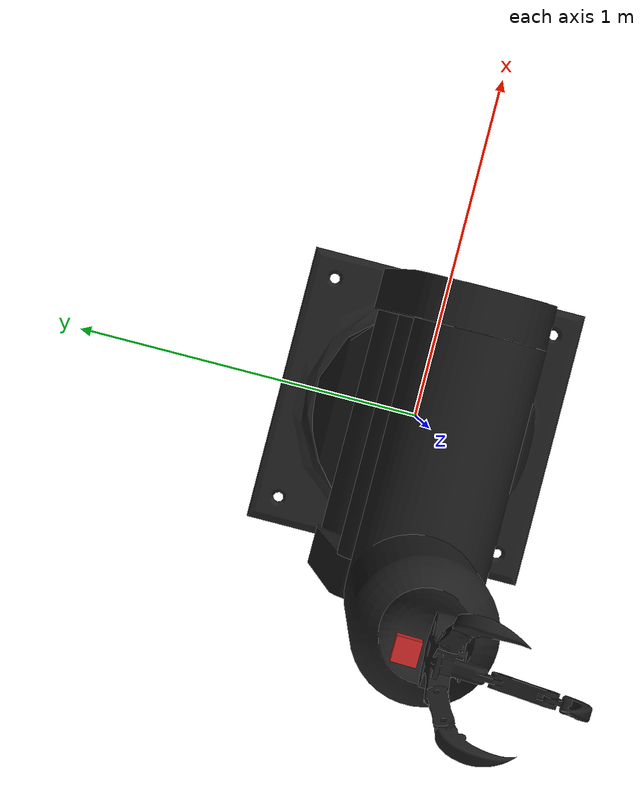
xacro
<?xml version="1.0" ?>

<robot name="mrm" xmlns:xacro="http://www.ros.org/wiki/xacro">

  <!-- BGN - Include -->
  <xacro:include filename="$(find eagle_claw_gripper)/urdf/robot_parameters.xacro" />
  <xacro:include filename="$(find eagle_claw_gripper)/urdf/links_joints.xacro" />
  <!-- END - Include -->

  <!-- BGN - Robot description -->
  <m_link_mesh name="${link_00_name}"
              origin_rpy="1.57 0 0" origin_xyz="0 0 0"
              mass="1024"
              ixx="170.667" ixy="0" ixz="0"
              iyy="170.667" iyz="0"
              izz="170.667"
              meshfile="package://eagle_claw_gripper/meshes/Base.stl"
              meshscale="0.1 0.1 0.1" />

  <m_joint name="${link_00_name}__${link_01_name}" type="revolute"
           axis_xyz="0 0 1"
           origin_rpy="0 0 0" origin_xyz="0 0 0.1"
           parent="base_link" child="link_01"
           limit_e="1000" limit_l="-3.14" limit_u="3.14" limit_v="0.5" />

  <m_link_mesh name="${link_01_name}"
              origin_rpy="1.57 0 0" origin_xyz="0 0 -0.1"
              mass="157.633"
              ixx="13.235" ixy="0" ixz="0"
              iyy="13.235" iyz="0"
              izz="9.655"
              meshfile="package://eagle_claw_gripper/meshes/Joint1.stl"
              meshscale="0.1 0.1 0.1" />

  <!-- Robot description with origin initial condition -->
  <m_joint name="${link_01_name}__${link_02_name}" type="revolute"
           axis_xyz="1 0 0"
           origin_rpy="0 0 0" origin_xyz="0 0 0.65"
           parent="link_01" child="link_02"
           limit_e="5000" limit_l="0" limit_u="1.57" limit_v="2" />

  <m_link_mesh name="${link_02_name}"
              origin_rpy="3.14 0 3.14" origin_xyz="-0.42 0.54 0.32"
              mass="57.906"
              ixx="13.235" ixy="0" ixz="0"
              iyy="13.235" iyz="0"
              izz="9.655"
              meshfile="package://eagle_claw_gripper/meshes/1.stl"
              meshscale="0.1 0.1 0.1" />

  <m_joint name="${link_02_name}__${link_03_name}" type="revolute"
           axis_xyz="1 0 0"
           origin_rpy="0 0 0" origin_xyz="0 0 0.75"
           parent="link_02" child="link_03"
           limit_e="5000" limit_l="0" limit_u="1.57" limit_v="2" />

  <m_link_mesh name="${link_03_name}"
              origin_rpy="3.14 0 0" origin_xyz="-0.02 1.5 0.78"
              mass="57.906"
              ixx="13.235" ixy="0" ixz="0"
              iyy="13.235" iyz="0"
              izz="9.655"
              meshfile="package://eagle_claw_gripper/meshes/2.stl"
              meshscale="0.1 0.1 0.1" />

  <m_joint name="${link_03_name}__${link_04_name}" type="revolute"
           axis_xyz="1 0 0"
           origin_rpy="0 0 0" origin_xyz="0 0 0.75"
           parent="link_03" child="link_04"
           limit_e="5000" limit_l="0" limit_u="1" limit_v="2" />

  <m_link_mesh name="${link_04_name}"
              origin_rpy="0 0 0" origin_xyz="-1.48 -0.765 -0.34"
              mass="57.906"
              ixx="13.235" ixy="0" ixz="0"
              iyy="13.235" iyz="0"
              izz="9.655"
              meshfile="package://eagle_claw_gripper/meshes/3.stl"
              meshscale="0.1 0.1 0.1" />

  <!-- End of arm declaration -->

  <!-- Begin of the gripper declaration -->
  <!-- Rotation of the wrist -->
  <m_joint name="${link_04_name}__${link_05_name}" type="revolute"
           axis_xyz="0 0 1"
           origin_rpy="0 0 3.14" origin_xyz="-0.35 0 0.85"
           parent="link_04" child="link_05"
           limit_e="5000" limit_l="-3.14" limit_u="3.14" limit_v="0.5" />

  <m_link_mesh name="${link_05_name}"
              origin_rpy="0 1.6 0" origin_xyz="0 0 0"
              mass="20"
              ixx="13.235" ixy="0" ixz="0"
              iyy="13.235" iyz="0"
              izz="9.655"
              meshfile="package://eagle_claw_gripper/meshes/Leg_detailed.stl"
              meshscale="0.002 0.002 0.002" />

  <!-- Joint leg -> bot left bone  -->
  <m_joint name="${link_05_name}__${link_06_name}" type="revolute"
           axis_xyz="-1 0 -0.3"
           origin_rpy="0 0 -0.3" origin_xyz="-0.06 0.025 0.37"
           parent="link_05" child="link_06"
           limit_e="5000" limit_l="0" limit_u="1" limit_v="2" />

  <m_link_mesh name="${link_06_name}"
              origin_rpy="0 1.2 0" origin_xyz="0 0 -0.01"
              mass="20"
              ixx="13.235" ixy="0" ixz="0"
              iyy="13.235" iyz="0"
              izz="9.655"
              meshfile="package://eagle_claw_gripper/meshes/Bone.stl"
              meshscale="0.002 0.002 0.002" />

  <!-- Joint bot left bone -> bot left talon  -->
  <m_joint name="${link_06_name}__${link_07_name}" type="revolute"
           axis_xyz="-1 0 -0.5"
           origin_rpy="-1 -0.1 0.1" origin_xyz="-0.01 0.00 0.1"
           parent="link_06" child="link_07"
           limit_e="5000" limit_l="0" limit_u="1" limit_v="2" />

  <m_link_mesh name="${link_07_name}"
              origin_rpy="1.6 1.7 3" origin_xyz="0 0 0"
              mass="20"
              ixx="13.235" ixy="0" ixz="0"
              iyy="13.235" iyz="0"
              izz="9.655"
              meshfile="package://eagle_claw_gripper/meshes/Talon.stl"
              meshscale="0.002 0.002 0.002" />

  <!-- Joint leg -> bot right bone  -->
  <m_joint name="${link_05_name}__${link_08_name}" type="revolute"
           axis_xyz="-1 0 0.2"
           origin_rpy="0 0 0.4" origin_xyz="0.05 0.018 0.38"
           parent="link_05" child="link_08"
           limit_e="5000" limit_l="0" limit_u="1" limit_v="2" />

  <m_link_mesh name="${link_08_name}"
              origin_rpy="0 2 0.05" origin_xyz="0 0 -0.01"
              mass="20"
              ixx="13.235" ixy="0" ixz="0"
              iyy="13.235" iyz="0"
              izz="9.655"
              meshfile="package://eagle_claw_gripper/meshes/Bone.stl"
              meshscale="0.002 0.002 0.002" />

  <!-- Joint bot right bone -> bot right talon  -->
  <m_joint name="${link_08_name}__${link_09_name}" type="revolute"
           axis_xyz="-1 0 0.5"
           origin_rpy="-1 0.3 0.3" origin_xyz="0.075 0.00 0.078"
           parent="link_08" child="link_09"
           limit_e="5000" limit_l="0" limit_u="1" limit_v="2" />

  <m_link_mesh name="${link_09_name}"
              origin_rpy="1.6 1 3" origin_xyz="0 0 0"
              mass="20"
              ixx="13.235" ixy="0" ixz="0"
              iyy="13.235" iyz="0"
              izz="9.655"
              meshfile="package://eagle_claw_gripper/meshes/Talon.stl"
              meshscale="0.002 0.002 0.002" />

  <!-- Joint leg -> top bone  -->
  <m_joint name="${link_05_name}__${link_10_name}" type="revolute"
           axis_xyz="1 0 0"
           origin_rpy="0 0 0" origin_xyz="0.024 0.13 0.32"
           parent="link_05" child="link_10"
           limit_e="5000" limit_l="0" limit_u="1" limit_v="2" />

  <m_link_mesh name="${link_10_name}"
              origin_rpy="1.6 0.5 -1.6" origin_xyz="0 0 0"
              mass="20"
              ixx="13.235" ixy="0" ixz="0"
              iyy="13.235" iyz="0"
              izz="9.655"
              meshfile="package://eagle_claw_gripper/meshes/Bone.stl"
              meshscale="0.002 0.002 0.002" />

  <!-- Joint top bone -> top talon  -->
  <m_joint name="${link_10_name}__${link_11_name}" type="revolute"
           axis_xyz="1 0 0"
           origin_rpy="0 0 0" origin_xyz="-0.027 0.10 0.05"
           parent="link_10" child="link_11"
           limit_e="5000" limit_l="0" limit_u="1" limit_v="2" />

  <m_link_mesh name="${link_11_name}"
              origin_rpy="0 1.5 -1.6" origin_xyz="0 0 0"
              mass="20"
              ixx="13.235" ixy="0" ixz="0"
              iyy="13.235" iyz="0"
              izz="9.655"
              meshfile="package://eagle_claw_gripper/meshes/Talon.stl"
              meshscale="0.002 0.002 0.002" />
  <!-- END - Robot description -->

  <!-- Camera Link/Joint-->
    <joint name="camera_joint" type="fixed">
      <axis xyz="0 1 0" />
      <origin xyz="0 -0.05 0.27" rpy="1.55 -1.55 0"/>
      <parent link="link_05"/>
      <child link="camera_link"/>
    </joint>

    <link name="camera_link">
      <collision>
        <origin xyz="0 0 0" rpy="0 0 0"/>
        <geometry>
      <box size="0.05 0.05 0.05"/>
        </geometry>
      </collision>

      <visual>
        <origin xyz="0 0 0" rpy="0 0 0"/>
        <geometry>
      <box size="0.05 0.05 0.05"/>
        </geometry>
        <material name="red"/>
      </visual>

      <inertial>
        <mass value="1e-5" />
        <origin xyz="0 0 0" rpy="0 0 0"/>
        <inertia ixx="1e-6" ixy="0" ixz="0" iyy="1e-6" iyz="0" izz="1e-6" />
      </inertial>
    </link>

    <!-- Camera Gazebo -->
    <gazebo reference="camera_link">
      <sensor type="camera" name="camera1">
        <update_rate>30.0</update_rate>
        <camera name="head">
          <horizontal_fov>1.3962634</horizontal_fov>
          <image>
            <width>800</width>
            <height>800</height>
            <format>R8G8B8</format>
          </image>
          <clip>
            <near>0.02</near>
            <far>300</far>
          </clip>
          <noise>
            <type>gaussian</type>
            <!-- Noise is sampled independently per pixel on each frame.
                 That pixel's noise value is added to each of its color
                 channels, which at that point lie in the range [0,1]. -->
            <mean>0.0</mean>
            <stddev>0.007</stddev>
          </noise>
        </camera>
        <plugin name="camera_controller" filename="libgazebo_ros_camera.so">
          <alwaysOn>true</alwaysOn>
          <updateRate>0.0</updateRate>
          <cameraName>gripper/camera</cameraName>
          <imageTopicName>image_raw</imageTopicName>
          <cameraInfoTopicName>camera_info</cameraInfoTopicName>
          <frameName>camera_link</frameName>
          <hackBaseline>0.07</hackBaseline>
          <distortionK1>0.0</distortionK1>
          <distortionK2>0.0</distortionK2>
          <distortionK3>0.0</distortionK3>
          <distortionT1>0.0</distortionT1>
          <distortionT2>0.0</distortionT2>
        </plugin>
      </sensor>
    </gazebo>

  <gazebo>
    <plugin name="gazebo_ros_control" filename="libgazebo_ros_control.so">
    </plugin>
  </gazebo>

</robot>

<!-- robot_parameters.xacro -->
<robot xmlns:xacro="http://www.ros.org/wiki/xacro">
  <!-- Arm links -->
  <xacro:property name="link_00_name" value="base_link" />
  <xacro:property name="link_01_name" value="link_01" />
  <xacro:property name="link_02_name" value="link_02" />
  <xacro:property name="link_03_name" value="link_03" />
  <xacro:property name="link_04_name" value="link_04" />
  <xacro:property name="link_05_name" value="link_05" />
  <xacro:property name="link_06_name" value="link_06" />
  <xacro:property name="link_07_name" value="link_07" />
  <xacro:property name="link_08_name" value="link_08" />
  <xacro:property name="link_09_name" value="link_09" />
  <xacro:property name="link_10_name" value="link_10" />
  <xacro:property name="link_11_name" value="link_11" />
</robot>

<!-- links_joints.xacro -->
<robot xmlns:xacro="http://www.ros.org/wiki/xacro">

  <xacro:macro name="m_joint" params="name type axis_xyz origin_rpy origin_xyz parent child limit_e limit_l limit_u limit_v">
    <joint name="${name}" type="${type}">
      <axis xyz="${axis_xyz}" />
      <limit effort="${limit_e}" lower="${limit_l}" upper="${limit_u}" velocity="${limit_v}" />
      <origin rpy="${origin_rpy}" xyz="${origin_xyz}" />
      <parent link="${parent}" />
      <child link="${child}" />
    </joint>
    <transmission name="trans_${name}">
      <type>transmission_interface/SimpleTransmission</type>
      <joint name="${name}">
        <hardwareInterface>hardware_interface/EffortJointInterface</hardwareInterface>
      </joint>
      <actuator name="motor_${name}">
        <hardwareInterface>hardware_interface/EffortJointInterface</hardwareInterface>
        <mechanicalReduction>1</mechanicalReduction>
      </actuator>
    </transmission>
  </xacro:macro>

  <xacro:macro name="m_link_cylinder" params="name origin_xyz origin_rpy radius length mass ixx ixy ixz iyy iyz izz">
    <link name="${name}">
      <inertial>
        <mass value="${mass}" />
        <origin rpy="${origin_rpy}" xyz="${origin_xyz}" />
        <inertia ixx="${ixx}" ixy="${ixy}" ixz="${ixz}" iyy="${iyy}" iyz="${iyz}" izz="${izz}" />
      </inertial>
      <collision>
        <origin rpy="${origin_rpy}" xyz="${origin_xyz}" />
        <geometry>
          <cylinder radius="${radius}" length="${length}" />
        </geometry>
      </collision>
      <visual>
        <origin rpy="${origin_rpy}" xyz="${origin_xyz}" />
        <geometry>
          <cylinder radius="${radius}" length="${length}" />
        </geometry>
      </visual>
    </link>
  </xacro:macro>

  <xacro:macro name="m_link_box" params="name origin_xyz origin_rpy size mass ixx ixy ixz iyy iyz izz">
    <link name="${name}">
      <inertial>
        <mass value="${mass}" />
        <origin rpy="${origin_rpy}" xyz="${origin_xyz}" />
        <inertia ixx="${ixx}" ixy="${ixy}" ixz="${ixz}" iyy="${iyy}" iyz="${iyz}" izz="${izz}" />
      </inertial>
      <collision>
        <origin rpy="${origin_rpy}" xyz="${origin_xyz}" />
        <geometry>
          <box size="${size}" />
        </geometry>
      </collision>
      <visual>
        <origin rpy="${origin_rpy}" xyz="${origin_xyz}" />
        <geometry>
          <box size="${size}" />
        </geometry>
      </visual>
    </link>
  </xacro:macro>

  <xacro:macro name="m_link_mesh" params="name origin_xyz origin_rpy meshfile meshscale mass ixx ixy ixz iyy iyz izz">
    <link name="${name}">
      <inertial>
        <mass value="${mass}" />
        <origin rpy="${origin_rpy}" xyz="${origin_xyz}" />
        <inertia ixx="${ixx}" ixy="${ixy}" ixz="${ixz}" iyy="${iyy}" iyz="${iyz}" izz="${izz}" />
      </inertial>
      <collision>
        <origin rpy="${origin_rpy}" xyz="${origin_xyz}" />
        <geometry>
          <mesh filename="${meshfile}" scale="${meshscale}"/>
        </geometry>
      </collision>
      <visual>
        <origin rpy="${origin_rpy}" xyz="${origin_xyz}" />
        <geometry>
          <mesh filename="${meshfile}" scale="${meshscale}"/>
        </geometry>
        <material name="light_black"/>
      </visual>
    </link>
  </xacro:macro>

</robot>
